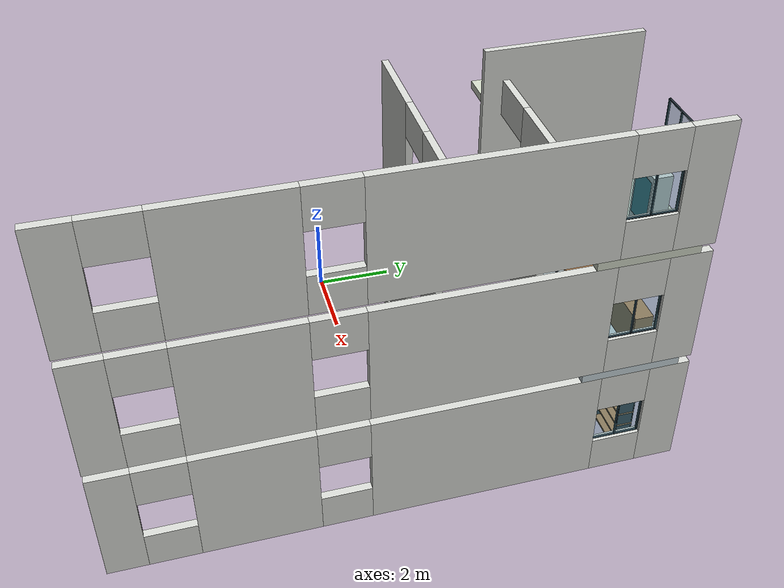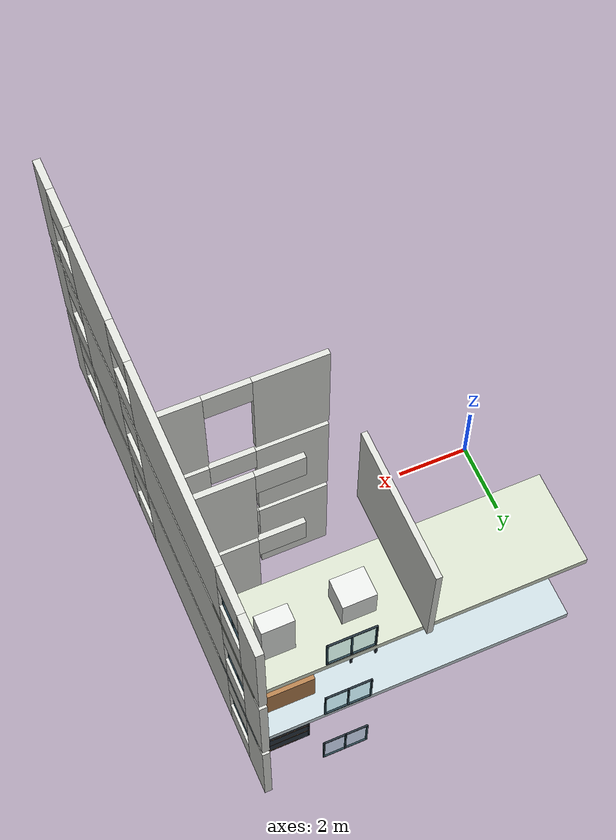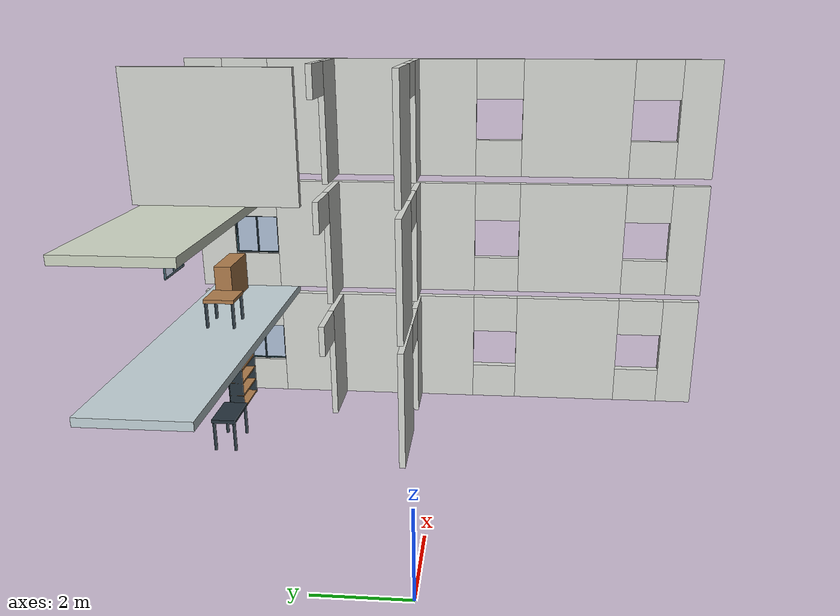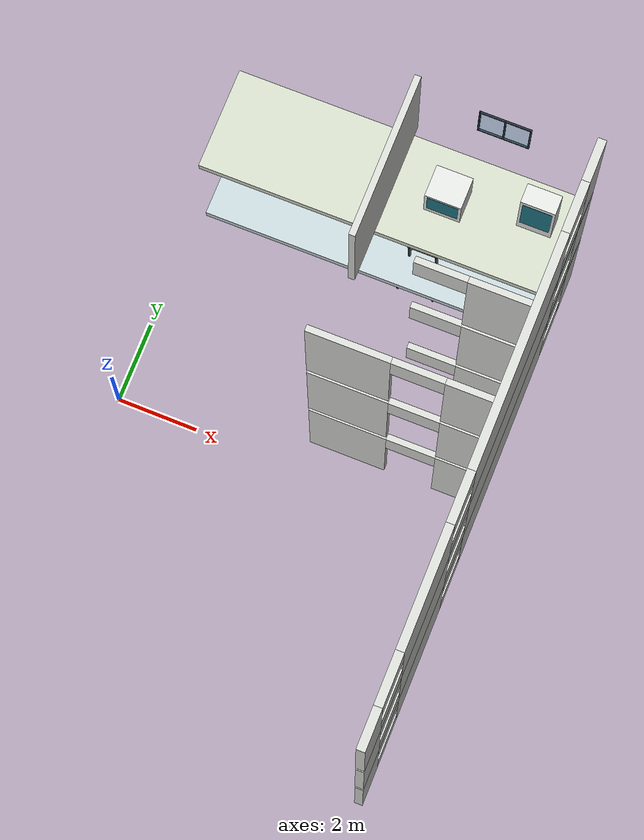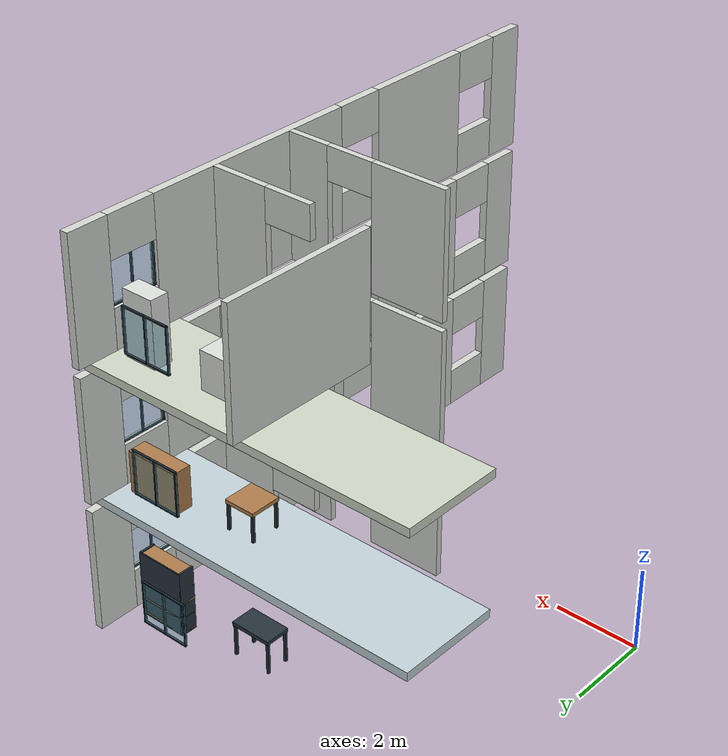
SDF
<sdf version="1.6">
 <world name="three_floor">
  <model name="f1_wall_002">
   <static>true</static>
   <pose>8.9 0 1.5 0 0 0</pose>
   <link name="f1_wall_002_link">
    <collision name="f1_wall_002_link_panel_0_collision">
     <pose>0 -6.425 0 0 0 0</pose>
     <geometry><box><size>0.2 0.95 3</size></box></geometry>
    </collision>
    <visual name="f1_wall_002_link_panel_0_visual">
     <pose>0 -6.425 0 0 0 0</pose>
     <geometry><box><size>0.2 0.95 3</size></box></geometry>
     <material><ambient>.84 .85 .83 1</ambient><diffuse>.84 .85 .83 1</diffuse></material>
    </visual>
    <collision name="f1_wall_002_link_sill_0_collision">
     <pose>0 -5.35 -1.025 0 0 0</pose>
     <geometry><box><size>0.2 1.2 0.95</size></box></geometry>
    </collision>
    <visual name="f1_wall_002_link_sill_0_visual">
     <pose>0 -5.35 -1.025 0 0 0</pose>
     <geometry><box><size>0.2 1.2 0.95</size></box></geometry>
     <material><ambient>.84 .85 .83 1</ambient><diffuse>.84 .85 .83 1</diffuse></material>
    </visual>
    <collision name="f1_wall_002_link_header_0_collision">
     <pose>0 -5.35 1 0 0 0</pose>
     <geometry><box><size>0.2 1.2 1</size></box></geometry>
    </collision>
    <visual name="f1_wall_002_link_header_0_visual">
     <pose>0 -5.35 1 0 0 0</pose>
     <geometry><box><size>0.2 1.2 1</size></box></geometry>
     <material><ambient>.84 .85 .83 1</ambient><diffuse>.84 .85 .83 1</diffuse></material>
    </visual>
    <collision name="f1_wall_002_link_panel_1_collision">
     <pose>0 -3.35 0 0 0 0</pose>
     <geometry><box><size>0.2 2.8 3</size></box></geometry>
    </collision>
    <visual name="f1_wall_002_link_panel_1_visual">
     <pose>0 -3.35 0 0 0 0</pose>
     <geometry><box><size>0.2 2.8 3</size></box></geometry>
     <material><ambient>.84 .85 .83 1</ambient><diffuse>.84 .85 .83 1</diffuse></material>
    </visual>
    <collision name="f1_wall_002_link_sill_1_collision">
     <pose>0 -1.35 -1.025 0 0 0</pose>
     <geometry><box><size>0.2 1.2 0.95</size></box></geometry>
    </collision>
    <visual name="f1_wall_002_link_sill_1_visual">
     <pose>0 -1.35 -1.025 0 0 0</pose>
     <geometry><box><size>0.2 1.2 0.95</size></box></geometry>
     <material><ambient>.84 .85 .83 1</ambient><diffuse>.84 .85 .83 1</diffuse></material>
    </visual>
    <collision name="f1_wall_002_link_header_1_collision">
     <pose>0 -1.35 1 0 0 0</pose>
     <geometry><box><size>0.2 1.2 1</size></box></geometry>
    </collision>
    <visual name="f1_wall_002_link_header_1_visual">
     <pose>0 -1.35 1 0 0 0</pose>
     <geometry><box><size>0.2 1.2 1</size></box></geometry>
     <material><ambient>.84 .85 .83 1</ambient><diffuse>.84 .85 .83 1</diffuse></material>
    </visual>
    <collision name="f1_wall_002_link_panel_2_collision">
     <pose>0 1.975 0 0 0 0</pose>
     <geometry><box><size>0.2 5.45 3</size></box></geometry>
    </collision>
    <visual name="f1_wall_002_link_panel_2_visual">
     <pose>0 1.975 0 0 0 0</pose>
     <geometry><box><size>0.2 5.45 3</size></box></geometry>
     <material><ambient>.84 .85 .83 1</ambient><diffuse>.84 .85 .83 1</diffuse></material>
    </visual>
    <collision name="f1_wall_002_link_sill_2_collision">
     <pose>0 5.3 -1.025 0 0 0</pose>
     <geometry><box><size>0.2 1.2 0.95</size></box></geometry>
    </collision>
    <visual name="f1_wall_002_link_sill_2_visual">
     <pose>0 5.3 -1.025 0 0 0</pose>
     <geometry><box><size>0.2 1.2 0.95</size></box></geometry>
     <material><ambient>.84 .85 .83 1</ambient><diffuse>.84 .85 .83 1</diffuse></material>
    </visual>
    <collision name="f1_wall_002_link_header_2_collision">
     <pose>0 5.3 1 0 0 0</pose>
     <geometry><box><size>0.2 1.2 1</size></box></geometry>
    </collision>
    <visual name="f1_wall_002_link_header_2_visual">
     <pose>0 5.3 1 0 0 0</pose>
     <geometry><box><size>0.2 1.2 1</size></box></geometry>
     <material><ambient>.84 .85 .83 1</ambient><diffuse>.84 .85 .83 1</diffuse></material>
    </visual>
    <collision name="f1_wall_002_link_last_panel_collision">
     <pose>0 6.4 0 0 0 0</pose>
     <geometry><box><size>0.2 1 3</size></box></geometry>
    </collision>
    <visual name="f1_wall_002_link_last_panel_visual">
     <pose>0 6.4 0 0 0 0</pose>
     <geometry><box><size>0.2 1 3</size></box></geometry>
     <material><ambient>.84 .85 .83 1</ambient><diffuse>.84 .85 .83 1</diffuse></material>
    </visual>
   </link>
  </model>
  <model name="f1_wall_026">
   <static>true</static>
   <pose>5.6 0.8 1.5 0 0 0</pose>
   <link name="f1_wall_026_link">
    <collision name="f1_wall_026_collision"><geometry><box><size>1.9 0.15 3</size></box></geometry></collision>
    <visual name="f1_wall_026_visual">
     <geometry><box><size>1.9 0.15 3</size></box></geometry>
     <material><ambient>.84 .85 .83 1</ambient><diffuse>.84 .85 .83 1</diffuse></material>
    </visual>
   </link>
  </model>
  <model name="f1_wall_027">
   <static>true</static>
   <pose>8.275 0.8 1.5 0 0 0</pose>
   <link name="f1_wall_027_link">
    <collision name="f1_wall_027_collision"><geometry><box><size>1.05 0.15 3</size></box></geometry></collision>
    <visual name="f1_wall_027_visual">
     <geometry><box><size>1.05 0.15 3</size></box></geometry>
     <material><ambient>.84 .85 .83 1</ambient><diffuse>.84 .85 .83 1</diffuse></material>
    </visual>
   </link>
  </model>
  <model name="f1_wall_042">
   <static>true</static>
   <pose>8.1 3 1.5 0 0 0</pose>
   <link name="f1_wall_042_link">
    <collision name="f1_wall_042_collision"><geometry><box><size>1.4 0.15 3</size></box></geometry></collision>
    <visual name="f1_wall_042_visual">
     <geometry><box><size>1.4 0.15 3</size></box></geometry>
     <material><ambient>.84 .85 .83 1</ambient><diffuse>.84 .85 .83 1</diffuse></material>
    </visual>
   </link>
  </model>
  <model name="f1_lintel_south_east_2">
   <static>true</static>
   <pose>7.15 0.8 2.6 0 0 0</pose>
   <link name="f1_lintel_south_east_2_link">
    <collision name="f1_lintel_south_east_2_collision">
     <geometry><box><size>1.2 0.15 0.8</size></box></geometry>
    </collision>
    <visual name="f1_lintel_south_east_2_visual">
     <geometry><box><size>1.2 0.15 0.8</size></box></geometry>
     <material><ambient>.84 .85 .83 1</ambient><diffuse>.84 .85 .83 1</diffuse></material>
    </visual>
   </link>
  </model>
  <model name="f1_lintel_north_east">
   <static>true</static>
   <pose>6.8 3 2.6 0 0 0</pose>
   <link name="f1_lintel_north_east_link">
    <collision name="f1_lintel_north_east_collision">
     <geometry><box><size>1.2 0.15 0.8</size></box></geometry>
    </collision>
    <visual name="f1_lintel_north_east_visual">
     <geometry><box><size>1.2 0.15 0.8</size></box></geometry>
     <material><ambient>.84 .85 .83 1</ambient><diffuse>.84 .85 .83 1</diffuse></material>
    </visual>
   </link>
  </model>
  <model name="f2_slab_05">
   <static>true</static>
   <pose>4.85 5.4 3.1 0 0 0</pose>
   <link name="f2_slab_05_link">
    <collision name="f2_slab_05_collision"><geometry><box><size>8.3 2.4 0.2</size></box></geometry></collision>
    <visual name="f2_slab_05_visual">
     <geometry><box><size>8.3 2.4 0.2</size></box></geometry>
     <material><ambient>0.77 0.83 0.85 1</ambient><diffuse>0.77 0.83 0.85 1</diffuse></material>
    </visual>
   </link>
  </model>
  <model name="f2_wall_007">
   <static>true</static>
   <pose>8.9 0 4.7 0 0 0</pose>
   <link name="f2_wall_007_link">
    <collision name="f2_wall_007_link_panel_0_collision">
     <pose>0 -6.425 0 0 0 0</pose>
     <geometry><box><size>0.2 0.95 3</size></box></geometry>
    </collision>
    <visual name="f2_wall_007_link_panel_0_visual">
     <pose>0 -6.425 0 0 0 0</pose>
     <geometry><box><size>0.2 0.95 3</size></box></geometry>
     <material><ambient>.84 .85 .83 1</ambient><diffuse>.84 .85 .83 1</diffuse></material>
    </visual>
    <collision name="f2_wall_007_link_sill_0_collision">
     <pose>0 -5.35 -1.025 0 0 0</pose>
     <geometry><box><size>0.2 1.2 0.95</size></box></geometry>
    </collision>
    <visual name="f2_wall_007_link_sill_0_visual">
     <pose>0 -5.35 -1.025 0 0 0</pose>
     <geometry><box><size>0.2 1.2 0.95</size></box></geometry>
     <material><ambient>.84 .85 .83 1</ambient><diffuse>.84 .85 .83 1</diffuse></material>
    </visual>
    <collision name="f2_wall_007_link_header_0_collision">
     <pose>0 -5.35 1 0 0 0</pose>
     <geometry><box><size>0.2 1.2 1</size></box></geometry>
    </collision>
    <visual name="f2_wall_007_link_header_0_visual">
     <pose>0 -5.35 1 0 0 0</pose>
     <geometry><box><size>0.2 1.2 1</size></box></geometry>
     <material><ambient>.84 .85 .83 1</ambient><diffuse>.84 .85 .83 1</diffuse></material>
    </visual>
    <collision name="f2_wall_007_link_panel_1_collision">
     <pose>0 -3.35 0 0 0 0</pose>
     <geometry><box><size>0.2 2.8 3</size></box></geometry>
    </collision>
    <visual name="f2_wall_007_link_panel_1_visual">
     <pose>0 -3.35 0 0 0 0</pose>
     <geometry><box><size>0.2 2.8 3</size></box></geometry>
     <material><ambient>.84 .85 .83 1</ambient><diffuse>.84 .85 .83 1</diffuse></material>
    </visual>
    <collision name="f2_wall_007_link_sill_1_collision">
     <pose>0 -1.35 -1.025 0 0 0</pose>
     <geometry><box><size>0.2 1.2 0.95</size></box></geometry>
    </collision>
    <visual name="f2_wall_007_link_sill_1_visual">
     <pose>0 -1.35 -1.025 0 0 0</pose>
     <geometry><box><size>0.2 1.2 0.95</size></box></geometry>
     <material><ambient>.84 .85 .83 1</ambient><diffuse>.84 .85 .83 1</diffuse></material>
    </visual>
    <collision name="f2_wall_007_link_header_1_collision">
     <pose>0 -1.35 1 0 0 0</pose>
     <geometry><box><size>0.2 1.2 1</size></box></geometry>
    </collision>
    <visual name="f2_wall_007_link_header_1_visual">
     <pose>0 -1.35 1 0 0 0</pose>
     <geometry><box><size>0.2 1.2 1</size></box></geometry>
     <material><ambient>.84 .85 .83 1</ambient><diffuse>.84 .85 .83 1</diffuse></material>
    </visual>
    <collision name="f2_wall_007_link_panel_2_collision">
     <pose>0 1.975 0 0 0 0</pose>
     <geometry><box><size>0.2 5.45 3</size></box></geometry>
    </collision>
    <visual name="f2_wall_007_link_panel_2_visual">
     <pose>0 1.975 0 0 0 0</pose>
     <geometry><box><size>0.2 5.45 3</size></box></geometry>
     <material><ambient>.84 .85 .83 1</ambient><diffuse>.84 .85 .83 1</diffuse></material>
    </visual>
    <collision name="f2_wall_007_link_sill_2_collision">
     <pose>0 5.3 -1.025 0 0 0</pose>
     <geometry><box><size>0.2 1.2 0.95</size></box></geometry>
    </collision>
    <visual name="f2_wall_007_link_sill_2_visual">
     <pose>0 5.3 -1.025 0 0 0</pose>
     <geometry><box><size>0.2 1.2 0.95</size></box></geometry>
     <material><ambient>.84 .85 .83 1</ambient><diffuse>.84 .85 .83 1</diffuse></material>
    </visual>
    <collision name="f2_wall_007_link_header_2_collision">
     <pose>0 5.3 1 0 0 0</pose>
     <geometry><box><size>0.2 1.2 1</size></box></geometry>
    </collision>
    <visual name="f2_wall_007_link_header_2_visual">
     <pose>0 5.3 1 0 0 0</pose>
     <geometry><box><size>0.2 1.2 1</size></box></geometry>
     <material><ambient>.84 .85 .83 1</ambient><diffuse>.84 .85 .83 1</diffuse></material>
    </visual>
    <collision name="f2_wall_007_link_last_panel_collision">
     <pose>0 6.4 0 0 0 0</pose>
     <geometry><box><size>0.2 1 3</size></box></geometry>
    </collision>
    <visual name="f2_wall_007_link_last_panel_visual">
     <pose>0 6.4 0 0 0 0</pose>
     <geometry><box><size>0.2 1 3</size></box></geometry>
     <material><ambient>.84 .85 .83 1</ambient><diffuse>.84 .85 .83 1</diffuse></material>
    </visual>
   </link>
  </model>
  <model name="f2_wall_026">
   <static>true</static>
   <pose>5.6 0.8 4.7 0 0 0</pose>
   <link name="f2_wall_026_link">
    <collision name="f2_wall_026_collision"><geometry><box><size>1.9 0.15 3</size></box></geometry></collision>
    <visual name="f2_wall_026_visual">
     <geometry><box><size>1.9 0.15 3</size></box></geometry>
     <material><ambient>.84 .85 .83 1</ambient><diffuse>.84 .85 .83 1</diffuse></material>
    </visual>
   </link>
  </model>
  <model name="f2_wall_027">
   <static>true</static>
   <pose>8.275 0.8 4.7 0 0 0</pose>
   <link name="f2_wall_027_link">
    <collision name="f2_wall_027_collision"><geometry><box><size>1.05 0.15 3</size></box></geometry></collision>
    <visual name="f2_wall_027_visual">
     <geometry><box><size>1.05 0.15 3</size></box></geometry>
     <material><ambient>.84 .85 .83 1</ambient><diffuse>.84 .85 .83 1</diffuse></material>
    </visual>
   </link>
  </model>
  <model name="f2_wall_042">
   <static>true</static>
   <pose>8.1 3 4.7 0 0 0</pose>
   <link name="f2_wall_042_link">
    <collision name="f2_wall_042_collision"><geometry><box><size>1.4 0.15 3</size></box></geometry></collision>
    <visual name="f2_wall_042_visual">
     <geometry><box><size>1.4 0.15 3</size></box></geometry>
     <material><ambient>.84 .85 .83 1</ambient><diffuse>.84 .85 .83 1</diffuse></material>
    </visual>
   </link>
  </model>
  <model name="f2_lintel_south_east_2">
   <static>true</static>
   <pose>7.15 0.8 5.8 0 0 0</pose>
   <link name="f2_lintel_south_east_2_link">
    <collision name="f2_lintel_south_east_2_collision">
     <geometry><box><size>1.2 0.15 0.8</size></box></geometry>
    </collision>
    <visual name="f2_lintel_south_east_2_visual">
     <geometry><box><size>1.2 0.15 0.8</size></box></geometry>
     <material><ambient>.84 .85 .83 1</ambient><diffuse>.84 .85 .83 1</diffuse></material>
    </visual>
   </link>
  </model>
  <model name="f2_lintel_north_east">
   <static>true</static>
   <pose>6.8 3 5.8 0 0 0</pose>
   <link name="f2_lintel_north_east_link">
    <collision name="f2_lintel_north_east_collision">
     <geometry><box><size>1.2 0.15 0.8</size></box></geometry>
    </collision>
    <visual name="f2_lintel_north_east_visual">
     <geometry><box><size>1.2 0.15 0.8</size></box></geometry>
     <material><ambient>.84 .85 .83 1</ambient><diffuse>.84 .85 .83 1</diffuse></material>
    </visual>
   </link>
  </model>
  <model name="f3_slab_05">
   <static>true</static>
   <pose>4.85 5.4 6.3 0 0 0</pose>
   <link name="f3_slab_05_link">
    <collision name="f3_slab_05_collision"><geometry><box><size>8.3 2.4 0.2</size></box></geometry></collision>
    <visual name="f3_slab_05_visual">
     <geometry><box><size>8.3 2.4 0.2</size></box></geometry>
     <material><ambient>0.82 0.85 0.78 1</ambient><diffuse>0.82 0.85 0.78 1</diffuse></material>
    </visual>
   </link>
  </model>
  <model name="f3_wall_011">
   <static>true</static>
   <pose>8.9 0 7.9 0 0 0</pose>
   <link name="f3_wall_011_link">
    <collision name="f3_wall_011_link_panel_0_collision">
     <pose>0 -6.425 0 0 0 0</pose>
     <geometry><box><size>0.2 0.95 3</size></box></geometry>
    </collision>
    <visual name="f3_wall_011_link_panel_0_visual">
     <pose>0 -6.425 0 0 0 0</pose>
     <geometry><box><size>0.2 0.95 3</size></box></geometry>
     <material><ambient>.84 .85 .83 1</ambient><diffuse>.84 .85 .83 1</diffuse></material>
    </visual>
    <collision name="f3_wall_011_link_sill_0_collision">
     <pose>0 -5.35 -1.025 0 0 0</pose>
     <geometry><box><size>0.2 1.2 0.95</size></box></geometry>
    </collision>
    <visual name="f3_wall_011_link_sill_0_visual">
     <pose>0 -5.35 -1.025 0 0 0</pose>
     <geometry><box><size>0.2 1.2 0.95</size></box></geometry>
     <material><ambient>.84 .85 .83 1</ambient><diffuse>.84 .85 .83 1</diffuse></material>
    </visual>
    <collision name="f3_wall_011_link_header_0_collision">
     <pose>0 -5.35 1 0 0 0</pose>
     <geometry><box><size>0.2 1.2 1</size></box></geometry>
    </collision>
    <visual name="f3_wall_011_link_header_0_visual">
     <pose>0 -5.35 1 0 0 0</pose>
     <geometry><box><size>0.2 1.2 1</size></box></geometry>
     <material><ambient>.84 .85 .83 1</ambient><diffuse>.84 .85 .83 1</diffuse></material>
    </visual>
    <collision name="f3_wall_011_link_panel_1_collision">
     <pose>0 -3.35 0 0 0 0</pose>
     <geometry><box><size>0.2 2.8 3</size></box></geometry>
    </collision>
    <visual name="f3_wall_011_link_panel_1_visual">
     <pose>0 -3.35 0 0 0 0</pose>
     <geometry><box><size>0.2 2.8 3</size></box></geometry>
     <material><ambient>.84 .85 .83 1</ambient><diffuse>.84 .85 .83 1</diffuse></material>
    </visual>
    <collision name="f3_wall_011_link_sill_1_collision">
     <pose>0 -1.35 -1.025 0 0 0</pose>
     <geometry><box><size>0.2 1.2 0.95</size></box></geometry>
    </collision>
    <visual name="f3_wall_011_link_sill_1_visual">
     <pose>0 -1.35 -1.025 0 0 0</pose>
     <geometry><box><size>0.2 1.2 0.95</size></box></geometry>
     <material><ambient>.84 .85 .83 1</ambient><diffuse>.84 .85 .83 1</diffuse></material>
    </visual>
    <collision name="f3_wall_011_link_header_1_collision">
     <pose>0 -1.35 1 0 0 0</pose>
     <geometry><box><size>0.2 1.2 1</size></box></geometry>
    </collision>
    <visual name="f3_wall_011_link_header_1_visual">
     <pose>0 -1.35 1 0 0 0</pose>
     <geometry><box><size>0.2 1.2 1</size></box></geometry>
     <material><ambient>.84 .85 .83 1</ambient><diffuse>.84 .85 .83 1</diffuse></material>
    </visual>
    <collision name="f3_wall_011_link_panel_2_collision">
     <pose>0 1.975 0 0 0 0</pose>
     <geometry><box><size>0.2 5.45 3</size></box></geometry>
    </collision>
    <visual name="f3_wall_011_link_panel_2_visual">
     <pose>0 1.975 0 0 0 0</pose>
     <geometry><box><size>0.2 5.45 3</size></box></geometry>
     <material><ambient>.84 .85 .83 1</ambient><diffuse>.84 .85 .83 1</diffuse></material>
    </visual>
    <collision name="f3_wall_011_link_sill_2_collision">
     <pose>0 5.3 -1.025 0 0 0</pose>
     <geometry><box><size>0.2 1.2 0.95</size></box></geometry>
    </collision>
    <visual name="f3_wall_011_link_sill_2_visual">
     <pose>0 5.3 -1.025 0 0 0</pose>
     <geometry><box><size>0.2 1.2 0.95</size></box></geometry>
     <material><ambient>.84 .85 .83 1</ambient><diffuse>.84 .85 .83 1</diffuse></material>
    </visual>
    <collision name="f3_wall_011_link_header_2_collision">
     <pose>0 5.3 1 0 0 0</pose>
     <geometry><box><size>0.2 1.2 1</size></box></geometry>
    </collision>
    <visual name="f3_wall_011_link_header_2_visual">
     <pose>0 5.3 1 0 0 0</pose>
     <geometry><box><size>0.2 1.2 1</size></box></geometry>
     <material><ambient>.84 .85 .83 1</ambient><diffuse>.84 .85 .83 1</diffuse></material>
    </visual>
    <collision name="f3_wall_011_link_last_panel_collision">
     <pose>0 6.4 0 0 0 0</pose>
     <geometry><box><size>0.2 1 3</size></box></geometry>
    </collision>
    <visual name="f3_wall_011_link_last_panel_visual">
     <pose>0 6.4 0 0 0 0</pose>
     <geometry><box><size>0.2 1 3</size></box></geometry>
     <material><ambient>.84 .85 .83 1</ambient><diffuse>.84 .85 .83 1</diffuse></material>
    </visual>
   </link>
  </model>
  <model name="f3_wall_026">
   <static>true</static>
   <pose>5.6 0.8 7.9 0 0 0</pose>
   <link name="f3_wall_026_link">
    <collision name="f3_wall_026_collision"><geometry><box><size>1.9 0.15 3</size></box></geometry></collision>
    <visual name="f3_wall_026_visual">
     <geometry><box><size>1.9 0.15 3</size></box></geometry>
     <material><ambient>.84 .85 .83 1</ambient><diffuse>.84 .85 .83 1</diffuse></material>
    </visual>
   </link>
  </model>
  <model name="f3_wall_027">
   <static>true</static>
   <pose>8.275 0.8 7.9 0 0 0</pose>
   <link name="f3_wall_027_link">
    <collision name="f3_wall_027_collision"><geometry><box><size>1.05 0.15 3</size></box></geometry></collision>
    <visual name="f3_wall_027_visual">
     <geometry><box><size>1.05 0.15 3</size></box></geometry>
     <material><ambient>.84 .85 .83 1</ambient><diffuse>.84 .85 .83 1</diffuse></material>
    </visual>
   </link>
  </model>
  <model name="f3_wall_039">
   <static>true</static>
   <pose>4.8 4.9 7.9 0 0 0</pose>
   <link name="f3_wall_039_link">
    <collision name="f3_wall_039_collision"><geometry><box><size>0.15 3.8 3</size></box></geometry></collision>
    <visual name="f3_wall_039_visual">
     <geometry><box><size>0.15 3.8 3</size></box></geometry>
     <material><ambient>.84 .85 .83 1</ambient><diffuse>.84 .85 .83 1</diffuse></material>
    </visual>
   </link>
  </model>
  <model name="f3_wall_042">
   <static>true</static>
   <pose>8.1 3 7.9 0 0 0</pose>
   <link name="f3_wall_042_link">
    <collision name="f3_wall_042_collision"><geometry><box><size>1.4 0.15 3</size></box></geometry></collision>
    <visual name="f3_wall_042_visual">
     <geometry><box><size>1.4 0.15 3</size></box></geometry>
     <material><ambient>.84 .85 .83 1</ambient><diffuse>.84 .85 .83 1</diffuse></material>
    </visual>
   </link>
  </model>
  <model name="f3_lintel_south_east_2">
   <static>true</static>
   <pose>7.15 0.8 9 0 0 0</pose>
   <link name="f3_lintel_south_east_2_link">
    <collision name="f3_lintel_south_east_2_collision">
     <geometry><box><size>1.2 0.15 0.8</size></box></geometry>
    </collision>
    <visual name="f3_lintel_south_east_2_visual">
     <geometry><box><size>1.2 0.15 0.8</size></box></geometry>
     <material><ambient>.84 .85 .83 1</ambient><diffuse>.84 .85 .83 1</diffuse></material>
    </visual>
   </link>
  </model>
  <model name="f3_lintel_north_east">
   <static>true</static>
   <pose>6.8 3 9 0 0 0</pose>
   <link name="f3_lintel_north_east_link">
    <collision name="f3_lintel_north_east_collision">
     <geometry><box><size>1.2 0.15 0.8</size></box></geometry>
    </collision>
    <visual name="f3_lintel_north_east_visual">
     <geometry><box><size>1.2 0.15 0.8</size></box></geometry>
     <material><ambient>.84 .85 .83 1</ambient><diffuse>.84 .85 .83 1</diffuse></material>
    </visual>
   </link>
  </model>
  <model name="f1_s2_window_05">
   <static>true</static>
   <pose>8.9 5.3 1.475 0 0 0</pose>
   <link name="f1_s2_window_05_link">
    <collision name="f1_s2_window_05_link_glass_collision">
     <geometry><box><size>0.045 1.2 1.05</size></box></geometry>
    </collision>
    <visual name="f1_s2_window_05_link_glass_visual">
     <geometry><box><size>0.045 1.2 1.05</size></box></geometry>
     <material><ambient>0.44 0.76 0.83 1</ambient><diffuse>0.44 0.76 0.83 1</diffuse></material>
     <transparency>0.65</transparency>
    </visual>
    <collision name="f1_s2_window_05_link_mullion_-0.58_collision">
     <pose>0 -0.58 0 0 0 0</pose>
     <geometry><box><size>0.045 0.035 1.05</size></box></geometry>
    </collision>
    <visual name="f1_s2_window_05_link_mullion_-0.58_visual">
     <pose>0 -0.58 0 0 0 0</pose>
     <geometry><box><size>0.045 0.035 1.05</size></box></geometry>
     <material><ambient>0.15 0.2 0.24 1</ambient><diffuse>0.15 0.2 0.24 1</diffuse></material>
    </visual>
    <collision name="f1_s2_window_05_link_mullion_0.58_collision">
     <pose>0 0.58 0 0 0 0</pose>
     <geometry><box><size>0.045 0.035 1.05</size></box></geometry>
    </collision>
    <visual name="f1_s2_window_05_link_mullion_0.58_visual">
     <pose>0 0.58 0 0 0 0</pose>
     <geometry><box><size>0.045 0.035 1.05</size></box></geometry>
     <material><ambient>0.15 0.2 0.24 1</ambient><diffuse>0.15 0.2 0.24 1</diffuse></material>
    </visual>
    <collision name="f1_s2_window_05_link_mullion_0_collision">
     <geometry><box><size>0.045 0.035 1.05</size></box></geometry>
    </collision>
    <visual name="f1_s2_window_05_link_mullion_0_visual">
     <geometry><box><size>0.045 0.035 1.05</size></box></geometry>
     <material><ambient>0.15 0.2 0.24 1</ambient><diffuse>0.15 0.2 0.24 1</diffuse></material>
    </visual>
    <collision name="f1_s2_window_05_link_frame_-0.51_collision">
     <pose>0 0 -0.51 0 0 0</pose>
     <geometry><box><size>0.045 1.2 0.03</size></box></geometry>
    </collision>
    <visual name="f1_s2_window_05_link_frame_-0.51_visual">
     <pose>0 0 -0.51 0 0 0</pose>
     <geometry><box><size>0.045 1.2 0.03</size></box></geometry>
     <material><ambient>0.15 0.2 0.24 1</ambient><diffuse>0.15 0.2 0.24 1</diffuse></material>
    </visual>
    <collision name="f1_s2_window_05_link_frame_0.51_collision">
     <pose>0 0 0.51 0 0 0</pose>
     <geometry><box><size>0.045 1.2 0.03</size></box></geometry>
    </collision>
    <visual name="f1_s2_window_05_link_frame_0.51_visual">
     <pose>0 0 0.51 0 0 0</pose>
     <geometry><box><size>0.045 1.2 0.03</size></box></geometry>
     <material><ambient>0.15 0.2 0.24 1</ambient><diffuse>0.15 0.2 0.24 1</diffuse></material>
    </visual>
   </link>
  </model>
  <model name="f1_s2_window_07">
   <static>true</static>
   <pose>6.8 6.9 1.475 0 0 0</pose>
   <link name="f1_s2_window_07_link">
    <collision name="f1_s2_window_07_link_glass_collision">
     <geometry><box><size>1.2 0.045 1.05</size></box></geometry>
    </collision>
    <visual name="f1_s2_window_07_link_glass_visual">
     <geometry><box><size>1.2 0.045 1.05</size></box></geometry>
     <material><ambient>0.44 0.76 0.83 1</ambient><diffuse>0.44 0.76 0.83 1</diffuse></material>
     <transparency>0.65</transparency>
    </visual>
    <collision name="f1_s2_window_07_link_mullion_-0.58_collision">
     <pose>-0.58 0 0 0 0 0</pose>
     <geometry><box><size>0.035 0.045 1.05</size></box></geometry>
    </collision>
    <visual name="f1_s2_window_07_link_mullion_-0.58_visual">
     <pose>-0.58 0 0 0 0 0</pose>
     <geometry><box><size>0.035 0.045 1.05</size></box></geometry>
     <material><ambient>0.15 0.2 0.24 1</ambient><diffuse>0.15 0.2 0.24 1</diffuse></material>
    </visual>
    <collision name="f1_s2_window_07_link_mullion_0.58_collision">
     <pose>0.58 0 0 0 0 0</pose>
     <geometry><box><size>0.035 0.045 1.05</size></box></geometry>
    </collision>
    <visual name="f1_s2_window_07_link_mullion_0.58_visual">
     <pose>0.58 0 0 0 0 0</pose>
     <geometry><box><size>0.035 0.045 1.05</size></box></geometry>
     <material><ambient>0.15 0.2 0.24 1</ambient><diffuse>0.15 0.2 0.24 1</diffuse></material>
    </visual>
    <collision name="f1_s2_window_07_link_mullion_0_collision">
     <geometry><box><size>0.035 0.045 1.05</size></box></geometry>
    </collision>
    <visual name="f1_s2_window_07_link_mullion_0_visual">
     <geometry><box><size>0.035 0.045 1.05</size></box></geometry>
     <material><ambient>0.15 0.2 0.24 1</ambient><diffuse>0.15 0.2 0.24 1</diffuse></material>
    </visual>
    <collision name="f1_s2_window_07_link_frame_-0.51_collision">
     <pose>0 0 -0.51 0 0 0</pose>
     <geometry><box><size>1.2 0.045 0.03</size></box></geometry>
    </collision>
    <visual name="f1_s2_window_07_link_frame_-0.51_visual">
     <pose>0 0 -0.51 0 0 0</pose>
     <geometry><box><size>1.2 0.045 0.03</size></box></geometry>
     <material><ambient>0.15 0.2 0.24 1</ambient><diffuse>0.15 0.2 0.24 1</diffuse></material>
    </visual>
    <collision name="f1_s2_window_07_link_frame_0.51_collision">
     <pose>0 0 0.51 0 0 0</pose>
     <geometry><box><size>1.2 0.045 0.03</size></box></geometry>
    </collision>
    <visual name="f1_s2_window_07_link_frame_0.51_visual">
     <pose>0 0 0.51 0 0 0</pose>
     <geometry><box><size>1.2 0.045 0.03</size></box></geometry>
     <material><ambient>0.15 0.2 0.24 1</ambient><diffuse>0.15 0.2 0.24 1</diffuse></material>
    </visual>
   </link>
  </model>
  <model name="f2_s2_window_16">
   <static>true</static>
   <pose>8.9 5.3 4.675 0 0 0</pose>
   <link name="f2_s2_window_16_link">
    <collision name="f2_s2_window_16_link_glass_collision">
     <geometry><box><size>0.045 1.2 1.05</size></box></geometry>
    </collision>
    <visual name="f2_s2_window_16_link_glass_visual">
     <geometry><box><size>0.045 1.2 1.05</size></box></geometry>
     <material><ambient>0.44 0.76 0.83 1</ambient><diffuse>0.44 0.76 0.83 1</diffuse></material>
     <transparency>0.65</transparency>
    </visual>
    <collision name="f2_s2_window_16_link_mullion_-0.58_collision">
     <pose>0 -0.58 0 0 0 0</pose>
     <geometry><box><size>0.045 0.035 1.05</size></box></geometry>
    </collision>
    <visual name="f2_s2_window_16_link_mullion_-0.58_visual">
     <pose>0 -0.58 0 0 0 0</pose>
     <geometry><box><size>0.045 0.035 1.05</size></box></geometry>
     <material><ambient>0.15 0.2 0.24 1</ambient><diffuse>0.15 0.2 0.24 1</diffuse></material>
    </visual>
    <collision name="f2_s2_window_16_link_mullion_0.58_collision">
     <pose>0 0.58 0 0 0 0</pose>
     <geometry><box><size>0.045 0.035 1.05</size></box></geometry>
    </collision>
    <visual name="f2_s2_window_16_link_mullion_0.58_visual">
     <pose>0 0.58 0 0 0 0</pose>
     <geometry><box><size>0.045 0.035 1.05</size></box></geometry>
     <material><ambient>0.15 0.2 0.24 1</ambient><diffuse>0.15 0.2 0.24 1</diffuse></material>
    </visual>
    <collision name="f2_s2_window_16_link_mullion_0_collision">
     <geometry><box><size>0.045 0.035 1.05</size></box></geometry>
    </collision>
    <visual name="f2_s2_window_16_link_mullion_0_visual">
     <geometry><box><size>0.045 0.035 1.05</size></box></geometry>
     <material><ambient>0.15 0.2 0.24 1</ambient><diffuse>0.15 0.2 0.24 1</diffuse></material>
    </visual>
    <collision name="f2_s2_window_16_link_frame_-0.51_collision">
     <pose>0 0 -0.51 0 0 0</pose>
     <geometry><box><size>0.045 1.2 0.03</size></box></geometry>
    </collision>
    <visual name="f2_s2_window_16_link_frame_-0.51_visual">
     <pose>0 0 -0.51 0 0 0</pose>
     <geometry><box><size>0.045 1.2 0.03</size></box></geometry>
     <material><ambient>0.15 0.2 0.24 1</ambient><diffuse>0.15 0.2 0.24 1</diffuse></material>
    </visual>
    <collision name="f2_s2_window_16_link_frame_0.51_collision">
     <pose>0 0 0.51 0 0 0</pose>
     <geometry><box><size>0.045 1.2 0.03</size></box></geometry>
    </collision>
    <visual name="f2_s2_window_16_link_frame_0.51_visual">
     <pose>0 0 0.51 0 0 0</pose>
     <geometry><box><size>0.045 1.2 0.03</size></box></geometry>
     <material><ambient>0.15 0.2 0.24 1</ambient><diffuse>0.15 0.2 0.24 1</diffuse></material>
    </visual>
   </link>
  </model>
  <model name="f2_s2_window_18">
   <static>true</static>
   <pose>6.8 6.9 4.675 0 0 0</pose>
   <link name="f2_s2_window_18_link">
    <collision name="f2_s2_window_18_link_glass_collision">
     <geometry><box><size>1.2 0.045 1.05</size></box></geometry>
    </collision>
    <visual name="f2_s2_window_18_link_glass_visual">
     <geometry><box><size>1.2 0.045 1.05</size></box></geometry>
     <material><ambient>0.44 0.76 0.83 1</ambient><diffuse>0.44 0.76 0.83 1</diffuse></material>
     <transparency>0.65</transparency>
    </visual>
    <collision name="f2_s2_window_18_link_mullion_-0.58_collision">
     <pose>-0.58 0 0 0 0 0</pose>
     <geometry><box><size>0.035 0.045 1.05</size></box></geometry>
    </collision>
    <visual name="f2_s2_window_18_link_mullion_-0.58_visual">
     <pose>-0.58 0 0 0 0 0</pose>
     <geometry><box><size>0.035 0.045 1.05</size></box></geometry>
     <material><ambient>0.15 0.2 0.24 1</ambient><diffuse>0.15 0.2 0.24 1</diffuse></material>
    </visual>
    <collision name="f2_s2_window_18_link_mullion_0.58_collision">
     <pose>0.58 0 0 0 0 0</pose>
     <geometry><box><size>0.035 0.045 1.05</size></box></geometry>
    </collision>
    <visual name="f2_s2_window_18_link_mullion_0.58_visual">
     <pose>0.58 0 0 0 0 0</pose>
     <geometry><box><size>0.035 0.045 1.05</size></box></geometry>
     <material><ambient>0.15 0.2 0.24 1</ambient><diffuse>0.15 0.2 0.24 1</diffuse></material>
    </visual>
    <collision name="f2_s2_window_18_link_mullion_0_collision">
     <geometry><box><size>0.035 0.045 1.05</size></box></geometry>
    </collision>
    <visual name="f2_s2_window_18_link_mullion_0_visual">
     <geometry><box><size>0.035 0.045 1.05</size></box></geometry>
     <material><ambient>0.15 0.2 0.24 1</ambient><diffuse>0.15 0.2 0.24 1</diffuse></material>
    </visual>
    <collision name="f2_s2_window_18_link_frame_-0.51_collision">
     <pose>0 0 -0.51 0 0 0</pose>
     <geometry><box><size>1.2 0.045 0.03</size></box></geometry>
    </collision>
    <visual name="f2_s2_window_18_link_frame_-0.51_visual">
     <pose>0 0 -0.51 0 0 0</pose>
     <geometry><box><size>1.2 0.045 0.03</size></box></geometry>
     <material><ambient>0.15 0.2 0.24 1</ambient><diffuse>0.15 0.2 0.24 1</diffuse></material>
    </visual>
    <collision name="f2_s2_window_18_link_frame_0.51_collision">
     <pose>0 0 0.51 0 0 0</pose>
     <geometry><box><size>1.2 0.045 0.03</size></box></geometry>
    </collision>
    <visual name="f2_s2_window_18_link_frame_0.51_visual">
     <pose>0 0 0.51 0 0 0</pose>
     <geometry><box><size>1.2 0.045 0.03</size></box></geometry>
     <material><ambient>0.15 0.2 0.24 1</ambient><diffuse>0.15 0.2 0.24 1</diffuse></material>
    </visual>
   </link>
  </model>
  <model name="f3_s2_window_28">
   <static>true</static>
   <pose>8.9 5.3 7.875 0 0 0</pose>
   <link name="f3_s2_window_28_link">
    <collision name="f3_s2_window_28_link_glass_collision">
     <geometry><box><size>0.045 1.2 1.05</size></box></geometry>
    </collision>
    <visual name="f3_s2_window_28_link_glass_visual">
     <geometry><box><size>0.045 1.2 1.05</size></box></geometry>
     <material><ambient>0.44 0.76 0.83 1</ambient><diffuse>0.44 0.76 0.83 1</diffuse></material>
     <transparency>0.65</transparency>
    </visual>
    <collision name="f3_s2_window_28_link_mullion_-0.58_collision">
     <pose>0 -0.58 0 0 0 0</pose>
     <geometry><box><size>0.045 0.035 1.05</size></box></geometry>
    </collision>
    <visual name="f3_s2_window_28_link_mullion_-0.58_visual">
     <pose>0 -0.58 0 0 0 0</pose>
     <geometry><box><size>0.045 0.035 1.05</size></box></geometry>
     <material><ambient>0.15 0.2 0.24 1</ambient><diffuse>0.15 0.2 0.24 1</diffuse></material>
    </visual>
    <collision name="f3_s2_window_28_link_mullion_0.58_collision">
     <pose>0 0.58 0 0 0 0</pose>
     <geometry><box><size>0.045 0.035 1.05</size></box></geometry>
    </collision>
    <visual name="f3_s2_window_28_link_mullion_0.58_visual">
     <pose>0 0.58 0 0 0 0</pose>
     <geometry><box><size>0.045 0.035 1.05</size></box></geometry>
     <material><ambient>0.15 0.2 0.24 1</ambient><diffuse>0.15 0.2 0.24 1</diffuse></material>
    </visual>
    <collision name="f3_s2_window_28_link_mullion_0_collision">
     <geometry><box><size>0.045 0.035 1.05</size></box></geometry>
    </collision>
    <visual name="f3_s2_window_28_link_mullion_0_visual">
     <geometry><box><size>0.045 0.035 1.05</size></box></geometry>
     <material><ambient>0.15 0.2 0.24 1</ambient><diffuse>0.15 0.2 0.24 1</diffuse></material>
    </visual>
    <collision name="f3_s2_window_28_link_frame_-0.51_collision">
     <pose>0 0 -0.51 0 0 0</pose>
     <geometry><box><size>0.045 1.2 0.03</size></box></geometry>
    </collision>
    <visual name="f3_s2_window_28_link_frame_-0.51_visual">
     <pose>0 0 -0.51 0 0 0</pose>
     <geometry><box><size>0.045 1.2 0.03</size></box></geometry>
     <material><ambient>0.15 0.2 0.24 1</ambient><diffuse>0.15 0.2 0.24 1</diffuse></material>
    </visual>
    <collision name="f3_s2_window_28_link_frame_0.51_collision">
     <pose>0 0 0.51 0 0 0</pose>
     <geometry><box><size>0.045 1.2 0.03</size></box></geometry>
    </collision>
    <visual name="f3_s2_window_28_link_frame_0.51_visual">
     <pose>0 0 0.51 0 0 0</pose>
     <geometry><box><size>0.045 1.2 0.03</size></box></geometry>
     <material><ambient>0.15 0.2 0.24 1</ambient><diffuse>0.15 0.2 0.24 1</diffuse></material>
    </visual>
   </link>
  </model>
  <model name="f3_s2_window_30">
   <static>true</static>
   <pose>6.8 6.9 7.875 0 0 0</pose>
   <link name="f3_s2_window_30_link">
    <collision name="f3_s2_window_30_link_glass_collision">
     <geometry><box><size>1.2 0.045 1.05</size></box></geometry>
    </collision>
    <visual name="f3_s2_window_30_link_glass_visual">
     <geometry><box><size>1.2 0.045 1.05</size></box></geometry>
     <material><ambient>0.44 0.76 0.83 1</ambient><diffuse>0.44 0.76 0.83 1</diffuse></material>
     <transparency>0.65</transparency>
    </visual>
    <collision name="f3_s2_window_30_link_mullion_-0.58_collision">
     <pose>-0.58 0 0 0 0 0</pose>
     <geometry><box><size>0.035 0.045 1.05</size></box></geometry>
    </collision>
    <visual name="f3_s2_window_30_link_mullion_-0.58_visual">
     <pose>-0.58 0 0 0 0 0</pose>
     <geometry><box><size>0.035 0.045 1.05</size></box></geometry>
     <material><ambient>0.15 0.2 0.24 1</ambient><diffuse>0.15 0.2 0.24 1</diffuse></material>
    </visual>
    <collision name="f3_s2_window_30_link_mullion_0.58_collision">
     <pose>0.58 0 0 0 0 0</pose>
     <geometry><box><size>0.035 0.045 1.05</size></box></geometry>
    </collision>
    <visual name="f3_s2_window_30_link_mullion_0.58_visual">
     <pose>0.58 0 0 0 0 0</pose>
     <geometry><box><size>0.035 0.045 1.05</size></box></geometry>
     <material><ambient>0.15 0.2 0.24 1</ambient><diffuse>0.15 0.2 0.24 1</diffuse></material>
    </visual>
    <collision name="f3_s2_window_30_link_mullion_0_collision">
     <geometry><box><size>0.035 0.045 1.05</size></box></geometry>
    </collision>
    <visual name="f3_s2_window_30_link_mullion_0_visual">
     <geometry><box><size>0.035 0.045 1.05</size></box></geometry>
     <material><ambient>0.15 0.2 0.24 1</ambient><diffuse>0.15 0.2 0.24 1</diffuse></material>
    </visual>
    <collision name="f3_s2_window_30_link_frame_-0.51_collision">
     <pose>0 0 -0.51 0 0 0</pose>
     <geometry><box><size>1.2 0.045 0.03</size></box></geometry>
    </collision>
    <visual name="f3_s2_window_30_link_frame_-0.51_visual">
     <pose>0 0 -0.51 0 0 0</pose>
     <geometry><box><size>1.2 0.045 0.03</size></box></geometry>
     <material><ambient>0.15 0.2 0.24 1</ambient><diffuse>0.15 0.2 0.24 1</diffuse></material>
    </visual>
    <collision name="f3_s2_window_30_link_frame_0.51_collision">
     <pose>0 0 0.51 0 0 0</pose>
     <geometry><box><size>1.2 0.045 0.03</size></box></geometry>
    </collision>
    <visual name="f3_s2_window_30_link_frame_0.51_visual">
     <pose>0 0 0.51 0 0 0</pose>
     <geometry><box><size>1.2 0.045 0.03</size></box></geometry>
     <material><ambient>0.15 0.2 0.24 1</ambient><diffuse>0.15 0.2 0.24 1</diffuse></material>
    </visual>
   </link>
  </model>
  <model name="f1_s2_furniture_20_shelf">
   <static>true</static>
   <pose>7.95 5.75 0 0 0 0</pose>
   <link name="f1_s2_furniture_20_shelf_link">
    <collision name="f1_s2_furniture_20_shelf_link_upright-0.575_collision">
     <pose>-0.575 0 0.8 0 0 0</pose>
     <geometry><box><size>0.05 0.4 1.6</size></box></geometry>
    </collision>
    <visual name="f1_s2_furniture_20_shelf_link_upright-0.575_visual">
     <pose>-0.575 0 0.8 0 0 0</pose>
     <geometry><box><size>0.05 0.4 1.6</size></box></geometry>
     <material><ambient>0.15 0.2 0.24 1</ambient><diffuse>0.15 0.2 0.24 1</diffuse></material>
    </visual>
    <collision name="f1_s2_furniture_20_shelf_link_upright0.575_collision">
     <pose>0.575 0 0.8 0 0 0</pose>
     <geometry><box><size>0.05 0.4 1.6</size></box></geometry>
    </collision>
    <visual name="f1_s2_furniture_20_shelf_link_upright0.575_visual">
     <pose>0.575 0 0.8 0 0 0</pose>
     <geometry><box><size>0.05 0.4 1.6</size></box></geometry>
     <material><ambient>0.15 0.2 0.24 1</ambient><diffuse>0.15 0.2 0.24 1</diffuse></material>
    </visual>
    <collision name="f1_s2_furniture_20_shelf_link_shelf0_collision">
     <pose>0 0 0.05 0 0 0</pose>
     <geometry><box><size>1.2 0.4 0.05</size></box></geometry>
    </collision>
    <visual name="f1_s2_furniture_20_shelf_link_shelf0_visual">
     <pose>0 0 0.05 0 0 0</pose>
     <geometry><box><size>1.2 0.4 0.05</size></box></geometry>
     <material><ambient>0.69 0.49 0.3 1</ambient><diffuse>0.69 0.49 0.3 1</diffuse></material>
    </visual>
    <collision name="f1_s2_furniture_20_shelf_link_shelf1_collision">
     <pose>0 0 0.425 0 0 0</pose>
     <geometry><box><size>1.2 0.4 0.05</size></box></geometry>
    </collision>
    <visual name="f1_s2_furniture_20_shelf_link_shelf1_visual">
     <pose>0 0 0.425 0 0 0</pose>
     <geometry><box><size>1.2 0.4 0.05</size></box></geometry>
     <material><ambient>0.69 0.49 0.3 1</ambient><diffuse>0.69 0.49 0.3 1</diffuse></material>
    </visual>
    <collision name="f1_s2_furniture_20_shelf_link_shelf2_collision">
     <pose>0 0 0.8 0 0 0</pose>
     <geometry><box><size>1.2 0.4 0.05</size></box></geometry>
    </collision>
    <visual name="f1_s2_furniture_20_shelf_link_shelf2_visual">
     <pose>0 0 0.8 0 0 0</pose>
     <geometry><box><size>1.2 0.4 0.05</size></box></geometry>
     <material><ambient>0.69 0.49 0.3 1</ambient><diffuse>0.69 0.49 0.3 1</diffuse></material>
    </visual>
    <collision name="f1_s2_furniture_20_shelf_link_shelf3_collision">
     <pose>0 0 1.175 0 0 0</pose>
     <geometry><box><size>1.2 0.4 0.05</size></box></geometry>
    </collision>
    <visual name="f1_s2_furniture_20_shelf_link_shelf3_visual">
     <pose>0 0 1.175 0 0 0</pose>
     <geometry><box><size>1.2 0.4 0.05</size></box></geometry>
     <material><ambient>0.69 0.49 0.3 1</ambient><diffuse>0.69 0.49 0.3 1</diffuse></material>
    </visual>
    <collision name="f1_s2_furniture_20_shelf_link_shelf4_collision">
     <pose>0 0 1.55 0 0 0</pose>
     <geometry><box><size>1.2 0.4 0.05</size></box></geometry>
    </collision>
    <visual name="f1_s2_furniture_20_shelf_link_shelf4_visual">
     <pose>0 0 1.55 0 0 0</pose>
     <geometry><box><size>1.2 0.4 0.05</size></box></geometry>
     <material><ambient>0.69 0.49 0.3 1</ambient><diffuse>0.69 0.49 0.3 1</diffuse></material>
    </visual>
    <collision name="f1_s2_furniture_20_shelf_link_back_collision">
     <pose>0 0.185 0.8 0 0 0</pose>
     <geometry><box><size>1.2 0.03 1.6</size></box></geometry>
    </collision>
    <visual name="f1_s2_furniture_20_shelf_link_back_visual">
     <pose>0 0.185 0.8 0 0 0</pose>
     <geometry><box><size>1.2 0.03 1.6</size></box></geometry>
     <material><ambient>0.15 0.2 0.24 1</ambient><diffuse>0.15 0.2 0.24 1</diffuse></material>
    </visual>
   </link>
  </model>
  <model name="f1_s2_furniture_21_workbench">
   <static>true</static>
   <pose>5.65 5.35 0 0 0 0</pose>
   <link name="f1_s2_furniture_21_workbench_link">
    <collision name="f1_s2_furniture_21_workbench_link_top_collision">
     <pose>0 0 0.805 0 0 0</pose>
     <geometry><box><size>1 0.6 0.09</size></box></geometry>
    </collision>
    <visual name="f1_s2_furniture_21_workbench_link_top_visual">
     <pose>0 0 0.805 0 0 0</pose>
     <geometry><box><size>1 0.6 0.09</size></box></geometry>
     <material><ambient>0.15 0.2 0.24 1</ambient><diffuse>0.15 0.2 0.24 1</diffuse></material>
    </visual>
    <collision name="f1_s2_furniture_21_workbench_link_leg_-0.455_-0.255_collision">
     <pose>-0.455 -0.255 0.38 0 0 0</pose>
     <geometry><box><size>0.06 0.06 0.76</size></box></geometry>
    </collision>
    <visual name="f1_s2_furniture_21_workbench_link_leg_-0.455_-0.255_visual">
     <pose>-0.455 -0.255 0.38 0 0 0</pose>
     <geometry><box><size>0.06 0.06 0.76</size></box></geometry>
     <material><ambient>0.15 0.2 0.24 1</ambient><diffuse>0.15 0.2 0.24 1</diffuse></material>
    </visual>
    <collision name="f1_s2_furniture_21_workbench_link_leg_-0.455_0.255_collision">
     <pose>-0.455 0.255 0.38 0 0 0</pose>
     <geometry><box><size>0.06 0.06 0.76</size></box></geometry>
    </collision>
    <visual name="f1_s2_furniture_21_workbench_link_leg_-0.455_0.255_visual">
     <pose>-0.455 0.255 0.38 0 0 0</pose>
     <geometry><box><size>0.06 0.06 0.76</size></box></geometry>
     <material><ambient>0.15 0.2 0.24 1</ambient><diffuse>0.15 0.2 0.24 1</diffuse></material>
    </visual>
    <collision name="f1_s2_furniture_21_workbench_link_leg_0.455_-0.255_collision">
     <pose>0.455 -0.255 0.38 0 0 0</pose>
     <geometry><box><size>0.06 0.06 0.76</size></box></geometry>
    </collision>
    <visual name="f1_s2_furniture_21_workbench_link_leg_0.455_-0.255_visual">
     <pose>0.455 -0.255 0.38 0 0 0</pose>
     <geometry><box><size>0.06 0.06 0.76</size></box></geometry>
     <material><ambient>0.15 0.2 0.24 1</ambient><diffuse>0.15 0.2 0.24 1</diffuse></material>
    </visual>
    <collision name="f1_s2_furniture_21_workbench_link_leg_0.455_0.255_collision">
     <pose>0.455 0.255 0.38 0 0 0</pose>
     <geometry><box><size>0.06 0.06 0.76</size></box></geometry>
    </collision>
    <visual name="f1_s2_furniture_21_workbench_link_leg_0.455_0.255_visual">
     <pose>0.455 0.255 0.38 0 0 0</pose>
     <geometry><box><size>0.06 0.06 0.76</size></box></geometry>
     <material><ambient>0.15 0.2 0.24 1</ambient><diffuse>0.15 0.2 0.24 1</diffuse></material>
    </visual>
   </link>
  </model>
  <model name="f2_s2_furniture_49_counter">
   <static>true</static>
   <pose>7.9 5.8 3.2 0 0 0</pose>
   <link name="f2_s2_furniture_49_counter_link">
    <collision name="f2_s2_furniture_49_counter_link_body_collision">
     <pose>0 0 0.5 0 0 0</pose>
     <geometry><box><size>1.3 0.45 1</size></box></geometry>
    </collision>
    <visual name="f2_s2_furniture_49_counter_link_body_visual">
     <pose>0 0 0.5 0 0 0</pose>
     <geometry><box><size>1.3 0.45 1</size></box></geometry>
     <material><ambient>0.69 0.49 0.3 1</ambient><diffuse>0.69 0.49 0.3 1</diffuse></material>
    </visual>
   </link>
  </model>
  <model name="f2_s2_furniture_50_table">
   <static>true</static>
   <pose>5.8 5.3 3.2 0 0 0</pose>
   <link name="f2_s2_furniture_50_table_link">
    <collision name="f2_s2_furniture_50_table_link_top_collision">
     <pose>0 0 0.685 0 0 0</pose>
     <geometry><box><size>0.75 0.75 0.09</size></box></geometry>
    </collision>
    <visual name="f2_s2_furniture_50_table_link_top_visual">
     <pose>0 0 0.685 0 0 0</pose>
     <geometry><box><size>0.75 0.75 0.09</size></box></geometry>
     <material><ambient>0.69 0.49 0.3 1</ambient><diffuse>0.69 0.49 0.3 1</diffuse></material>
    </visual>
    <collision name="f2_s2_furniture_50_table_link_leg_-0.33_-0.33_collision">
     <pose>-0.33 -0.33 0.32 0 0 0</pose>
     <geometry><box><size>0.06 0.06 0.64</size></box></geometry>
    </collision>
    <visual name="f2_s2_furniture_50_table_link_leg_-0.33_-0.33_visual">
     <pose>-0.33 -0.33 0.32 0 0 0</pose>
     <geometry><box><size>0.06 0.06 0.64</size></box></geometry>
     <material><ambient>0.15 0.2 0.24 1</ambient><diffuse>0.15 0.2 0.24 1</diffuse></material>
    </visual>
    <collision name="f2_s2_furniture_50_table_link_leg_-0.33_0.33_collision">
     <pose>-0.33 0.33 0.32 0 0 0</pose>
     <geometry><box><size>0.06 0.06 0.64</size></box></geometry>
    </collision>
    <visual name="f2_s2_furniture_50_table_link_leg_-0.33_0.33_visual">
     <pose>-0.33 0.33 0.32 0 0 0</pose>
     <geometry><box><size>0.06 0.06 0.64</size></box></geometry>
     <material><ambient>0.15 0.2 0.24 1</ambient><diffuse>0.15 0.2 0.24 1</diffuse></material>
    </visual>
    <collision name="f2_s2_furniture_50_table_link_leg_0.33_-0.33_collision">
     <pose>0.33 -0.33 0.32 0 0 0</pose>
     <geometry><box><size>0.06 0.06 0.64</size></box></geometry>
    </collision>
    <visual name="f2_s2_furniture_50_table_link_leg_0.33_-0.33_visual">
     <pose>0.33 -0.33 0.32 0 0 0</pose>
     <geometry><box><size>0.06 0.06 0.64</size></box></geometry>
     <material><ambient>0.15 0.2 0.24 1</ambient><diffuse>0.15 0.2 0.24 1</diffuse></material>
    </visual>
    <collision name="f2_s2_furniture_50_table_link_leg_0.33_0.33_collision">
     <pose>0.33 0.33 0.32 0 0 0</pose>
     <geometry><box><size>0.06 0.06 0.64</size></box></geometry>
    </collision>
    <visual name="f2_s2_furniture_50_table_link_leg_0.33_0.33_visual">
     <pose>0.33 0.33 0.32 0 0 0</pose>
     <geometry><box><size>0.06 0.06 0.64</size></box></geometry>
     <material><ambient>0.15 0.2 0.24 1</ambient><diffuse>0.15 0.2 0.24 1</diffuse></material>
    </visual>
   </link>
  </model>
  <model name="f3_s2_furniture_76_plinth">
   <static>true</static>
   <pose>6.1 5.45 6.4 0 0 0</pose>
   <link name="f3_s2_furniture_76_plinth_link">
    <collision name="f3_s2_furniture_76_plinth_link_body_collision">
     <pose>0 0 0.45 0 0 0</pose>
     <geometry><box><size>0.85 0.75 0.9</size></box></geometry>
    </collision>
    <visual name="f3_s2_furniture_76_plinth_link_body_visual">
     <pose>0 0 0.45 0 0 0</pose>
     <geometry><box><size>0.85 0.75 0.9</size></box></geometry>
     <material><ambient>0.88 0.89 0.88 1</ambient><diffuse>0.88 0.89 0.88 1</diffuse></material>
    </visual>
    <collision name="f3_s2_furniture_76_plinth_link_front_inset_collision">
     <pose>0 -0.376 0.495 0 0 0</pose>
     <geometry><box><size>0.7225 0.002 0.648</size></box></geometry>
    </collision>
    <visual name="f3_s2_furniture_76_plinth_link_front_inset_visual">
     <pose>0 -0.376 0.495 0 0 0</pose>
     <geometry><box><size>0.7225 0.002 0.648</size></box></geometry>
     <material><ambient>0.12 0.46 0.52 1</ambient><diffuse>0.12 0.46 0.52 1</diffuse></material>
    </visual>
   </link>
  </model>
  <model name="f3_s2_furniture_77_cabinet">
   <static>true</static>
   <pose>8.1 5.7 6.4 0 0 0</pose>
   <link name="f3_s2_furniture_77_cabinet_link">
    <collision name="f3_s2_furniture_77_cabinet_link_body_collision">
     <pose>0 0 0.775 0 0 0</pose>
     <geometry><box><size>0.8 0.45 1.55</size></box></geometry>
    </collision>
    <visual name="f3_s2_furniture_77_cabinet_link_body_visual">
     <pose>0 0 0.775 0 0 0</pose>
     <geometry><box><size>0.8 0.45 1.55</size></box></geometry>
     <material><ambient>0.88 0.89 0.88 1</ambient><diffuse>0.88 0.89 0.88 1</diffuse></material>
    </visual>
    <collision name="f3_s2_furniture_77_cabinet_link_front_inset_collision">
     <pose>0 -0.226 0.8525 0 0 0</pose>
     <geometry><box><size>0.68 0.002 1.116</size></box></geometry>
    </collision>
    <visual name="f3_s2_furniture_77_cabinet_link_front_inset_visual">
     <pose>0 -0.226 0.8525 0 0 0</pose>
     <geometry><box><size>0.68 0.002 1.116</size></box></geometry>
     <material><ambient>0.12 0.46 0.52 1</ambient><diffuse>0.12 0.46 0.52 1</diffuse></material>
    </visual>
   </link>
  </model>
 </world>
</sdf>
